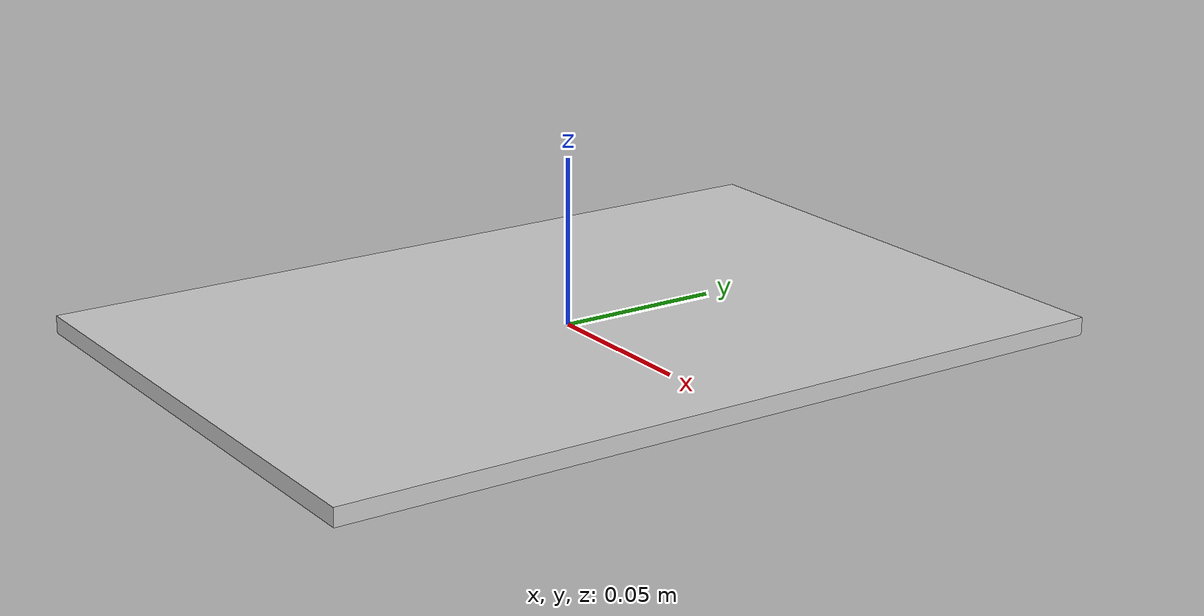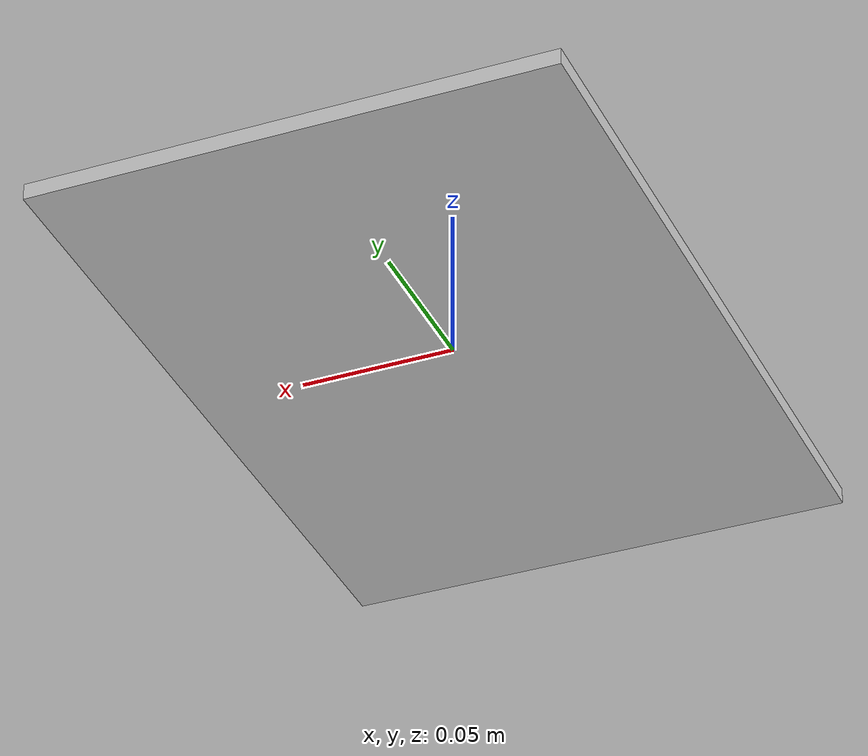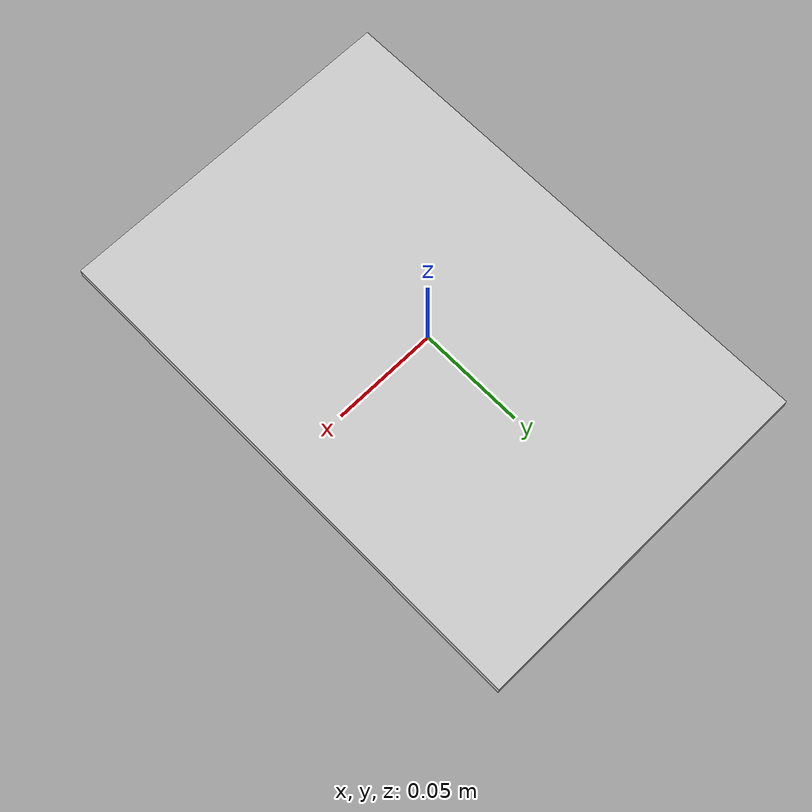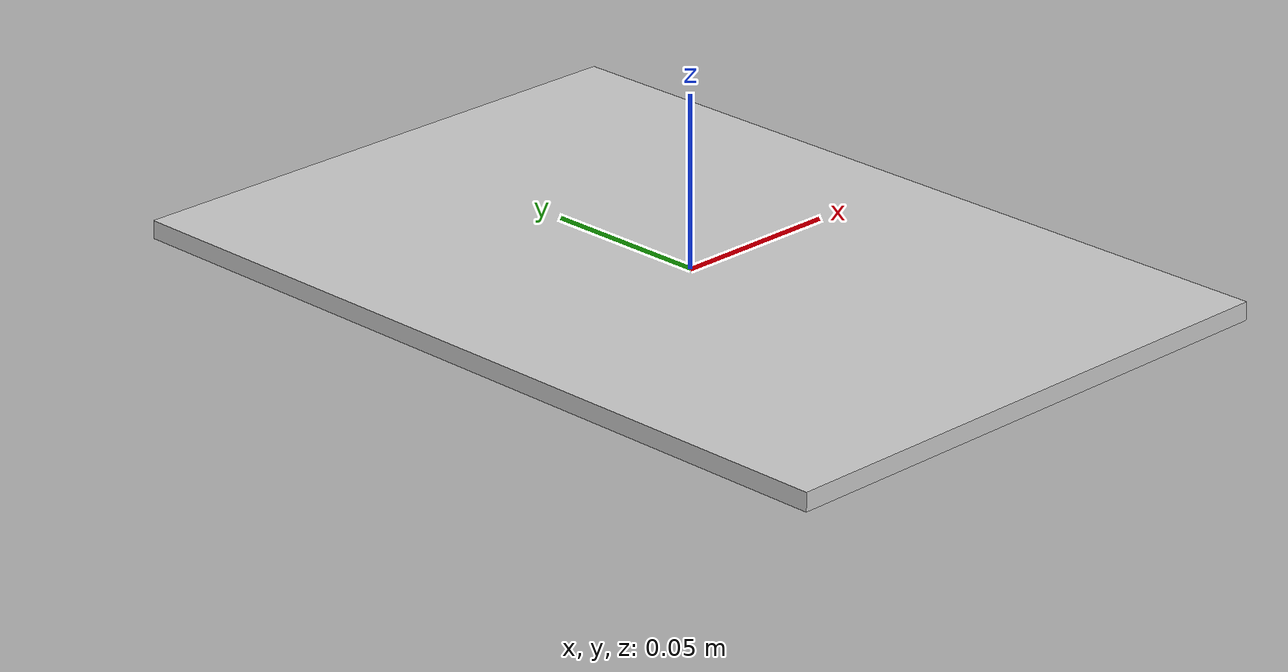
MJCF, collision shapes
<mujoco model="cutting_board_6">
  <asset>
    <mesh file="visual/model_normalized_0.obj" name="model_normalized_0_vis" scale="0.2500000000000001 0.2500000000000001 0.2500000000000001" refquat="0.7071067811865475 0.0 0.0 -0.7071067811865475"/>
    <texture type="2d" name="image0" file="visual/image0.png"/>
    <material name="material.008" texture="image0" specular="0.5" shininess="0.542019892"/>
  </asset>
  <default>
    <default class="region">
      <geom group="1" conaffinity="0" contype="0" rgba="0 1 0 0"/>
    </default>
  </default>
  <worldbody>
    <body>
      <body name="object">
        <geom solimp="0.998 0.998 0.001" solref="0.001 1" density="100" friction="0.95 0.3 0.1" type="mesh" mesh="model_normalized_0_vis" conaffinity="0" contype="0" group="1" material="material.008"/>
        <geom solimp="0.998 0.998 0.001" solref="0.001 1" density="100" friction="0.95 0.3 0.1" type="box" group="0" rgba="0.8 0.8 0.8 0.0" size="0.08355954750000004 0.12340652500000006 0.0026773750000000014" pos="9.830250000000128e-05 0.0 -0.0002111875"/>
        <geom class="region" name="reg_bbox" type="box" pos="9.830250000000128e-05 0.0 -0.0002111875" size="0.08355954750000004 0.12340652500000006 0.0026773750000000014"/>
        <geom rgba="0 0 0 0 " size="0.08 0.12 0.001" pos="0 0 0.0045" type="box" name="reg_int" class="region"/>
      </body>
    </body>
  </worldbody>
</mujoco>
